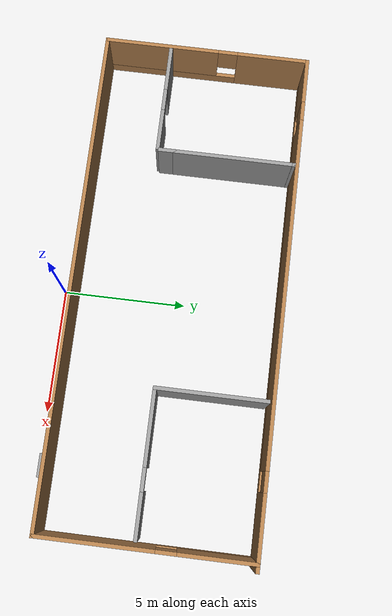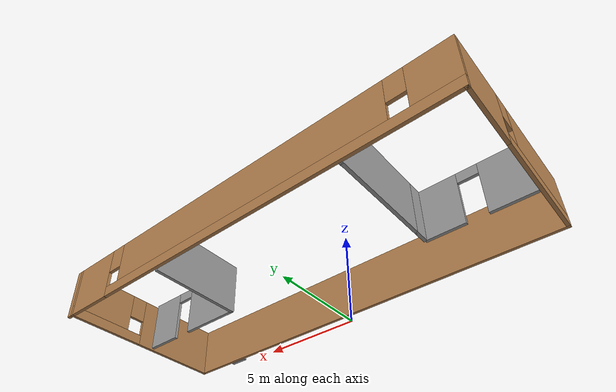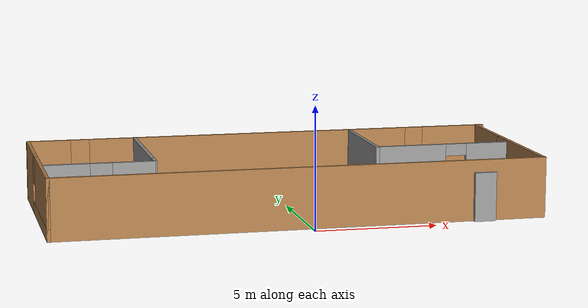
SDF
<?xml version='1.0'?>
<sdf version='1.6'>
  <model name='house'>
    <pose frame=''>-0.221457 4.69846 0 0 -0 0</pose>
    <link name='Door_1'>
      <collision name='Door_1_Collision'>
        <geometry>
          <box>
            <size>0.9 0.17 2</size>
          </box>
        </geometry>
        <pose frame=''>0 0 1 0 -0 0</pose>
      </collision>
      <visual name='Door_1_Visual'>
        <pose frame=''>0 0 1 0 -0 0</pose>
        <geometry>
          <box>
            <size>0.9 0.17 2</size>
          </box>
        </geometry>
        <material>
          <script>
            <uri>file://media/materials/scripts/gazebo.material</uri>
            <name>Gazebo/Grey</name>
          </script>
        </material>
      </visual>
      <pose frame=''>7.38356 -4.33888 0 0 -0 0</pose>
    </link>
    <link name='Wall_16'>
      <pose frame=''>0 4.175 0 0 -0 3.14159</pose>
      <visual name='Wall_16_Visual_0'>
        <pose frame=''>-8.80743 0 1.25 0 -0 0</pose>
        <geometry>
          <box>
            <size>2.88515 0.15 2.5</size>
          </box>
        </geometry>
        <material>
          <script>
            <uri>file://media/materials/scripts/gazebo.material</uri>
            <name>Gazebo/Wood</name>
          </script>
          <ambient>1 1 1 1</ambient>
        </material>
      </visual>
      <collision name='Wall_16_Collision_0'>
        <geometry>
          <box>
            <size>2.88515 0.15 2.5</size>
          </box>
        </geometry>
        <pose frame=''>-8.80743 0 1.25 0 -0 0</pose>
      </collision>
      <visual name='Wall_16_Visual_1'>
        <pose frame=''>1.44257 0 0.25 0 -0 0</pose>
        <geometry>
          <box>
            <size>17.6149 0.15 0.5</size>
          </box>
        </geometry>
        <material>
          <script>
            <uri>file://media/materials/scripts/gazebo.material</uri>
            <name>Gazebo/Wood</name>
          </script>
          <ambient>1 1 1 1</ambient>
        </material>
      </visual>
      <collision name='Wall_16_Collision_1'>
        <geometry>
          <box>
            <size>17.6149 0.15 0.5</size>
          </box>
        </geometry>
        <pose frame=''>1.44257 0 0.25 0 -0 0</pose>
      </collision>
      <visual name='Wall_16_Visual_2'>
        <pose frame=''>0.502238 0 1.5 0 -0 0</pose>
        <geometry>
          <box>
            <size>14.1342 0.15 2</size>
          </box>
        </geometry>
        <material>
          <script>
            <uri>file://media/materials/scripts/gazebo.material</uri>
            <name>Gazebo/Wood</name>
          </script>
          <ambient>1 1 1 1</ambient>
        </material>
      </visual>
      <collision name='Wall_16_Collision_2'>
        <geometry>
          <box>
            <size>14.1342 0.15 2</size>
          </box>
        </geometry>
        <pose frame=''>0.502238 0 1.5 0 -0 0</pose>
      </collision>
      <visual name='Wall_16_Visual_3'>
        <pose frame=''>9.30966 0 1.5 0 -0 0</pose>
        <geometry>
          <box>
            <size>1.88067 0.15 2</size>
          </box>
        </geometry>
        <material>
          <script>
            <uri>file://media/materials/scripts/gazebo.material</uri>
            <name>Gazebo/Wood</name>
          </script>
          <ambient>1 1 1 1</ambient>
        </material>
      </visual>
      <collision name='Wall_16_Collision_3'>
        <geometry>
          <box>
            <size>1.88067 0.15 2</size>
          </box>
        </geometry>
        <pose frame=''>9.30966 0 1.5 0 -0 0</pose>
      </collision>
      <visual name='Wall_16_Visual_4'>
        <pose frame=''>-6.96485 0 1.9 0 -0 0</pose>
        <geometry>
          <box>
            <size>0.8 0.15 1.2</size>
          </box>
        </geometry>
        <material>
          <script>
            <uri>file://media/materials/scripts/gazebo.material</uri>
            <name>Gazebo/Wood</name>
          </script>
          <ambient>1 1 1 1</ambient>
        </material>
      </visual>
      <collision name='Wall_16_Collision_4'>
        <geometry>
          <box>
            <size>0.8 0.15 1.2</size>
          </box>
        </geometry>
        <pose frame=''>-6.96485 0 1.9 0 -0 0</pose>
      </collision>
      <visual name='Wall_16_Visual_5'>
        <pose frame=''>7.96933 0 1.9 0 -0 0</pose>
        <geometry>
          <box>
            <size>0.8 0.15 1.2</size>
          </box>
        </geometry>
        <material>
          <script>
            <uri>file://media/materials/scripts/gazebo.material</uri>
            <name>Gazebo/Wood</name>
          </script>
          <ambient>1 1 1 1</ambient>
        </material>
      </visual>
      <collision name='Wall_16_Collision_5'>
        <geometry>
          <box>
            <size>0.8 0.15 1.2</size>
          </box>
        </geometry>
        <pose frame=''>7.96933 0 1.9 0 -0 0</pose>
      </collision>
    </link>
    <link name='Wall_17'>
      <pose frame=''>-10.175 0 0 0 0 -1.5708</pose>
      <visual name='Wall_17_Visual_0'>
        <pose frame=''>-2.7609 0 1.25 0 -0 0</pose>
        <geometry>
          <box>
            <size>2.9782 0.15 2.5</size>
          </box>
        </geometry>
        <material>
          <script>
            <uri>file://media/materials/scripts/gazebo.material</uri>
            <name>Gazebo/Wood</name>
          </script>
          <ambient>1 1 1 1</ambient>
        </material>
      </visual>
      <collision name='Wall_17_Collision_0'>
        <geometry>
          <box>
            <size>2.9782 0.15 2.5</size>
          </box>
        </geometry>
        <pose frame=''>-2.7609 0 1.25 0 -0 0</pose>
      </collision>
      <visual name='Wall_17_Visual_1'>
        <pose frame=''>1.4891 0 0.25 0 -0 0</pose>
        <geometry>
          <box>
            <size>5.5218 0.15 0.5</size>
          </box>
        </geometry>
        <material>
          <script>
            <uri>file://media/materials/scripts/gazebo.material</uri>
            <name>Gazebo/Wood</name>
          </script>
          <ambient>1 1 1 1</ambient>
        </material>
      </visual>
      <collision name='Wall_17_Collision_1'>
        <geometry>
          <box>
            <size>5.5218 0.15 0.5</size>
          </box>
        </geometry>
        <pose frame=''>1.4891 0 0.25 0 -0 0</pose>
      </collision>
      <visual name='Wall_17_Visual_2'>
        <pose frame=''>1.8891 0 1.5 0 -0 0</pose>
        <geometry>
          <box>
            <size>4.7218 0.15 2</size>
          </box>
        </geometry>
        <material>
          <script>
            <uri>file://media/materials/scripts/gazebo.material</uri>
            <name>Gazebo/Wood</name>
          </script>
          <ambient>1 1 1 1</ambient>
        </material>
      </visual>
      <collision name='Wall_17_Collision_2'>
        <geometry>
          <box>
            <size>4.7218 0.15 2</size>
          </box>
        </geometry>
        <pose frame=''>1.8891 0 1.5 0 -0 0</pose>
      </collision>
      <visual name='Wall_17_Visual_3'>
        <pose frame=''>-0.871802 0 1.9 0 -0 0</pose>
        <geometry>
          <box>
            <size>0.8 0.15 1.2</size>
          </box>
        </geometry>
        <material>
          <script>
            <uri>file://media/materials/scripts/gazebo.material</uri>
            <name>Gazebo/Wood</name>
          </script>
          <ambient>1 1 1 1</ambient>
        </material>
      </visual>
      <collision name='Wall_17_Collision_3'>
        <geometry>
          <box>
            <size>0.8 0.15 1.2</size>
          </box>
        </geometry>
        <pose frame=''>-0.871802 0 1.9 0 -0 0</pose>
      </collision>
    </link>
    <link name='Wall_18'>
      <collision name='Wall_18_Collision'>
        <geometry>
          <box>
            <size>20.25 0.15 2.5</size>
          </box>
        </geometry>
        <pose frame=''>0 0 1.25 0 -0 0</pose>
      </collision>
      <visual name='Wall_18_Visual'>
        <pose frame=''>0 0 1.25 0 -0 0</pose>
        <geometry>
          <box>
            <size>20.25 0.15 2.5</size>
          </box>
        </geometry>
        <material>
          <script>
            <uri>file://media/materials/scripts/gazebo.material</uri>
            <name>Gazebo/Wood</name>
          </script>
          <ambient>1 1 1 1</ambient>
        </material>
      </visual>
      <pose frame=''>-0.125 -4.175 0 0 -0 0</pose>
    </link>
    <link name='Wall_19'>
      <pose frame=''>9.925 0 0 0 -0 1.5708</pose>
      <visual name='Wall_19_Visual_0'>
        <pose frame=''>-1.93562 0 1.25 0 -0 0</pose>
        <geometry>
          <box>
            <size>4.62875 0.15 2.5</size>
          </box>
        </geometry>
        <material>
          <script>
            <uri>file://media/materials/scripts/gazebo.material</uri>
            <name>Gazebo/Wood</name>
          </script>
          <ambient>1 1 1 1</ambient>
        </material>
      </visual>
      <collision name='Wall_19_Collision_0'>
        <geometry>
          <box>
            <size>4.62875 0.15 2.5</size>
          </box>
        </geometry>
        <pose frame=''>-1.93562 0 1.25 0 -0 0</pose>
      </collision>
      <visual name='Wall_19_Visual_1'>
        <pose frame=''>2.31438 0 0.25 0 -0 0</pose>
        <geometry>
          <box>
            <size>3.87125 0.15 0.5</size>
          </box>
        </geometry>
        <material>
          <script>
            <uri>file://media/materials/scripts/gazebo.material</uri>
            <name>Gazebo/Wood</name>
          </script>
          <ambient>1 1 1 1</ambient>
        </material>
      </visual>
      <collision name='Wall_19_Collision_1'>
        <geometry>
          <box>
            <size>3.87125 0.15 0.5</size>
          </box>
        </geometry>
        <pose frame=''>2.31438 0 0.25 0 -0 0</pose>
      </collision>
      <visual name='Wall_19_Visual_2'>
        <pose frame=''>2.71438 0 1.5 0 -0 0</pose>
        <geometry>
          <box>
            <size>3.07125 0.15 2</size>
          </box>
        </geometry>
        <material>
          <script>
            <uri>file://media/materials/scripts/gazebo.material</uri>
            <name>Gazebo/Wood</name>
          </script>
          <ambient>1 1 1 1</ambient>
        </material>
      </visual>
      <collision name='Wall_19_Collision_2'>
        <geometry>
          <box>
            <size>3.07125 0.15 2</size>
          </box>
        </geometry>
        <pose frame=''>2.71438 0 1.5 0 -0 0</pose>
      </collision>
      <visual name='Wall_19_Visual_3'>
        <pose frame=''>0.778754 0 1.9 0 -0 0</pose>
        <geometry>
          <box>
            <size>0.8 0.15 1.2</size>
          </box>
        </geometry>
        <material>
          <script>
            <uri>file://media/materials/scripts/gazebo.material</uri>
            <name>Gazebo/Wood</name>
          </script>
          <ambient>1 1 1 1</ambient>
        </material>
      </visual>
      <collision name='Wall_19_Collision_3'>
        <geometry>
          <box>
            <size>0.8 0.15 1.2</size>
          </box>
        </geometry>
        <pose frame=''>0.778754 0 1.9 0 -0 0</pose>
      </collision>
    </link>
    <link name='Wall_25'>
      <collision name='Wall_25_Collision'>
        <geometry>
          <box>
            <size>4.5 0.15 2.5</size>
          </box>
        </geometry>
        <pose frame=''>0 0 1.25 0 -0 0</pose>
      </collision>
      <visual name='Wall_25_Visual'>
        <pose frame=''>0 0 1.25 0 -0 0</pose>
        <geometry>
          <box>
            <size>4.5 0.15 2.5</size>
          </box>
        </geometry>
        <material>
          <script>
            <uri>file://media/materials/scripts/gazebo.material</uri>
            <name>Gazebo/Grey</name>
          </script>
          <ambient>1 1 1 1</ambient>
        </material>
      </visual>
      <pose frame=''>3.98732 1.79066 0 0 -0 1.5708</pose>
    </link>
    <link name='Wall_29'>
      <pose frame=''>6.81671 -0.384344 0 0 -0 3.14159</pose>
      <visual name='Wall_29_Visual_0'>
        <pose frame=''>-1.96919 0 1.25 0 -0 0</pose>
        <geometry>
          <box>
            <size>1.81162 0.15 2.5</size>
          </box>
        </geometry>
        <material>
          <script>
            <uri>file://media/materials/scripts/gazebo.material</uri>
            <name>Gazebo/Grey</name>
          </script>
          <ambient>1 1 1 1</ambient>
        </material>
      </visual>
      <collision name='Wall_29_Collision_0'>
        <geometry>
          <box>
            <size>1.81162 0.15 2.5</size>
          </box>
        </geometry>
        <pose frame=''>-1.96919 0 1.25 0 -0 0</pose>
      </collision>
      <visual name='Wall_29_Visual_1'>
        <pose frame=''>1.35581 0 1.25 0 -0 0</pose>
        <geometry>
          <box>
            <size>3.03838 0.15 2.5</size>
          </box>
        </geometry>
        <material>
          <script>
            <uri>file://media/materials/scripts/gazebo.material</uri>
            <name>Gazebo/Grey</name>
          </script>
          <ambient>1 1 1 1</ambient>
        </material>
      </visual>
      <collision name='Wall_29_Collision_1'>
        <geometry>
          <box>
            <size>3.03838 0.15 2.5</size>
          </box>
        </geometry>
        <pose frame=''>1.35581 0 1.25 0 -0 0</pose>
      </collision>
      <visual name='Wall_29_Visual_2'>
        <pose frame=''>-0.613376 0 2.25 0 -0 0</pose>
        <geometry>
          <box>
            <size>0.9 0.15 0.5</size>
          </box>
        </geometry>
        <material>
          <script>
            <uri>file://media/materials/scripts/gazebo.material</uri>
            <name>Gazebo/Grey</name>
          </script>
          <ambient>1 1 1 1</ambient>
        </material>
      </visual>
      <collision name='Wall_29_Collision_2'>
        <geometry>
          <box>
            <size>0.9 0.15 0.5</size>
          </box>
        </geometry>
        <pose frame=''>-0.613376 0 2.25 0 -0 0</pose>
      </collision>
    </link>
    <link name='Wall_31'>
      <collision name='Wall_31_Collision'>
        <geometry>
          <box>
            <size>0.75 0.15 2.5</size>
          </box>
        </geometry>
        <pose frame=''>0 0 1.25 0 -0 0</pose>
      </collision>
      <visual name='Wall_31_Visual'>
        <pose frame=''>0 0 1.25 0 -0 0</pose>
        <geometry>
          <box>
            <size>0.75 0.15 2.5</size>
          </box>
        </geometry>
        <material>
          <script>
            <uri>file://media/materials/scripts/gazebo.material</uri>
            <name>Gazebo/Grey</name>
          </script>
          <ambient>1 1 1 1</ambient>
        </material>
      </visual>
      <pose frame=''>-5.59661 -1.10787 0 0 -0 1.5708</pose>
    </link>
    <link name='Wall_32'>
      <collision name='Wall_32_Collision'>
        <geometry>
          <box>
            <size>5 0.15 2.5</size>
          </box>
        </geometry>
        <pose frame=''>0 0 1.25 0 -0 0</pose>
      </collision>
      <visual name='Wall_32_Visual'>
        <pose frame=''>0 0 1.25 0 -0 0</pose>
        <geometry>
          <box>
            <size>5 0.15 2.5</size>
          </box>
        </geometry>
        <material>
          <script>
            <uri>file://media/materials/scripts/gazebo.material</uri>
            <name>Gazebo/Grey</name>
          </script>
          <ambient>1 1 1 1</ambient>
        </material>
      </visual>
      <pose frame=''>-5.59661 1.61713 0 0 -0 1.5708</pose>
    </link>
    <link name='Wall_33'>
      <collision name='Wall_33_Collision'>
        <geometry>
          <box>
            <size>0.16 0.15 2.5</size>
          </box>
        </geometry>
        <pose frame=''>0 0 1.25 0 -0 0</pose>
      </collision>
      <visual name='Wall_33_Visual'>
        <pose frame=''>0 0 1.25 0 -0 0</pose>
        <geometry>
          <box>
            <size>0.16 0.15 2.5</size>
          </box>
        </geometry>
        <material>
          <script>
            <uri>file://media/materials/scripts/gazebo.material</uri>
            <name>Gazebo/Grey</name>
          </script>
          <ambient>1 1 1 1</ambient>
        </material>
      </visual>
      <pose frame=''>-5.59161 4.04213 0 0 -0 0</pose>
    </link>
    <link name='Wall_35'>
      <pose frame=''>-7.84138 -1.50092 0 0 -0 0</pose>
      <visual name='Wall_35_Visual_0'>
        <pose frame=''>-1.32093 0 1.25 0 -0 0</pose>
        <geometry>
          <box>
            <size>1.85815 0.15 2.5</size>
          </box>
        </geometry>
        <material>
          <script>
            <uri>file://media/materials/scripts/gazebo.material</uri>
            <name>Gazebo/Grey</name>
          </script>
          <ambient>1 1 1 1</ambient>
        </material>
      </visual>
      <collision name='Wall_35_Collision_0'>
        <geometry>
          <box>
            <size>1.85815 0.15 2.5</size>
          </box>
        </geometry>
        <pose frame=''>-1.32093 0 1.25 0 -0 0</pose>
      </collision>
      <visual name='Wall_35_Visual_1'>
        <pose frame=''>1.37907 0 1.25 0 -0 0</pose>
        <geometry>
          <box>
            <size>1.74185 0.15 2.5</size>
          </box>
        </geometry>
        <material>
          <script>
            <uri>file://media/materials/scripts/gazebo.material</uri>
            <name>Gazebo/Grey</name>
          </script>
          <ambient>1 1 1 1</ambient>
        </material>
      </visual>
      <collision name='Wall_35_Collision_1'>
        <geometry>
          <box>
            <size>1.74185 0.15 2.5</size>
          </box>
        </geometry>
        <pose frame=''>1.37907 0 1.25 0 -0 0</pose>
      </collision>
      <visual name='Wall_35_Visual_2'>
        <pose frame=''>0.058147 0 2.25 0 -0 0</pose>
        <geometry>
          <box>
            <size>0.9 0.15 0.5</size>
          </box>
        </geometry>
        <material>
          <script>
            <uri>file://media/materials/scripts/gazebo.material</uri>
            <name>Gazebo/Grey</name>
          </script>
          <ambient>1 1 1 1</ambient>
        </material>
      </visual>
      <collision name='Wall_35_Collision_2'>
        <geometry>
          <box>
            <size>0.9 0.15 0.5</size>
          </box>
        </geometry>
        <pose frame=''>0.058147 0 2.25 0 -0 0</pose>
      </collision>
    </link>
    <static>1</static>
  </model>
</sdf>
